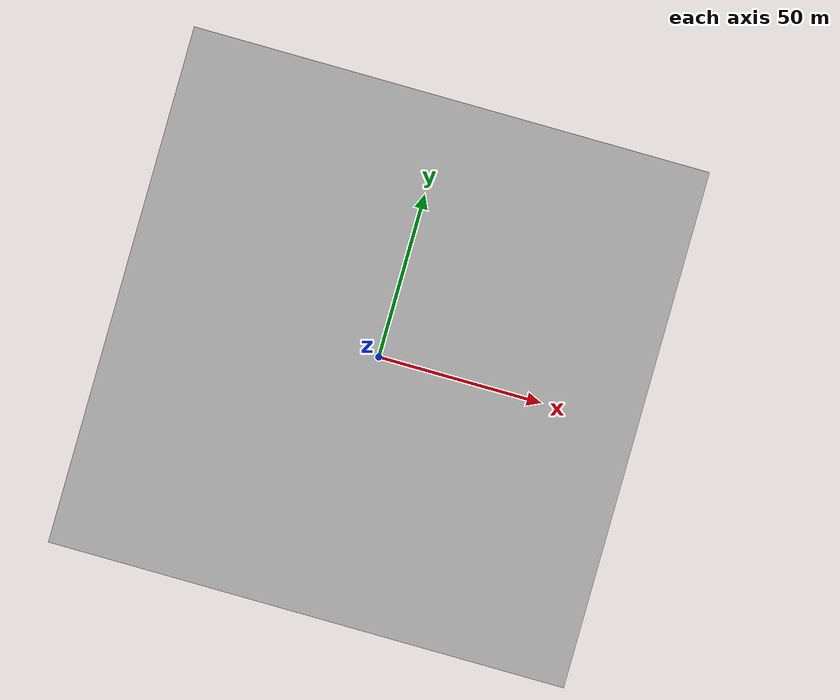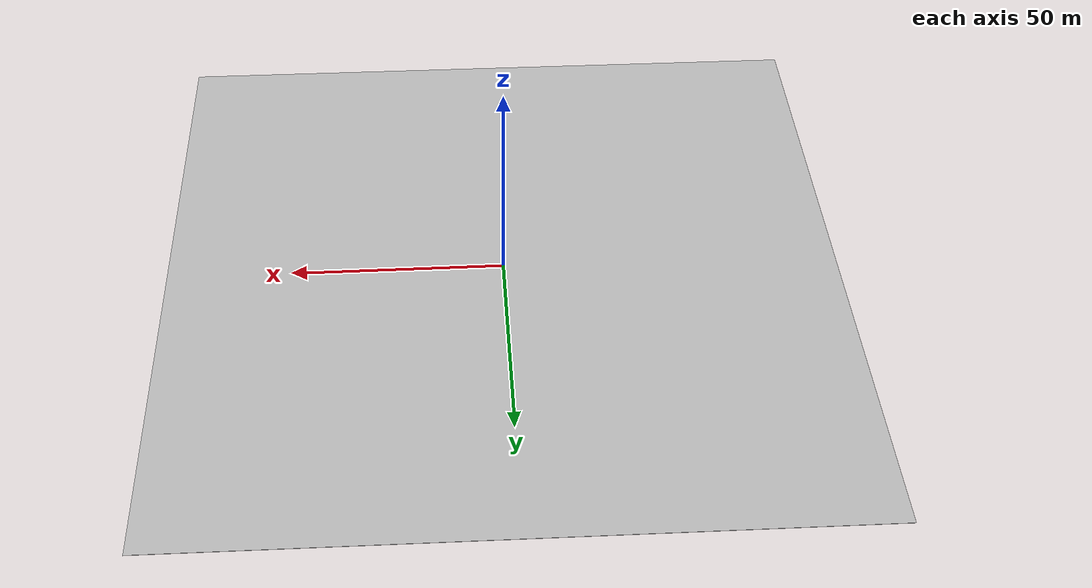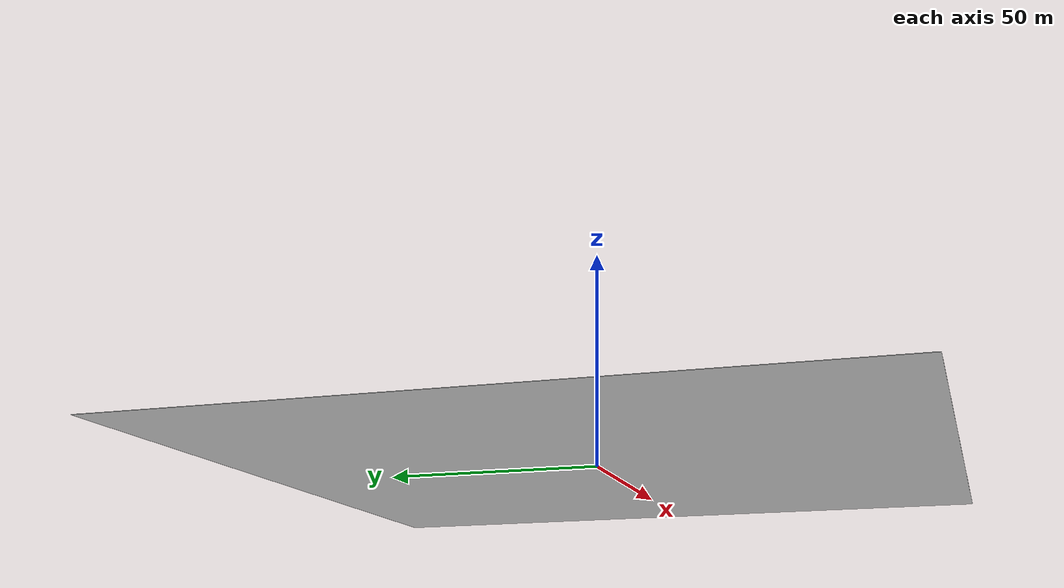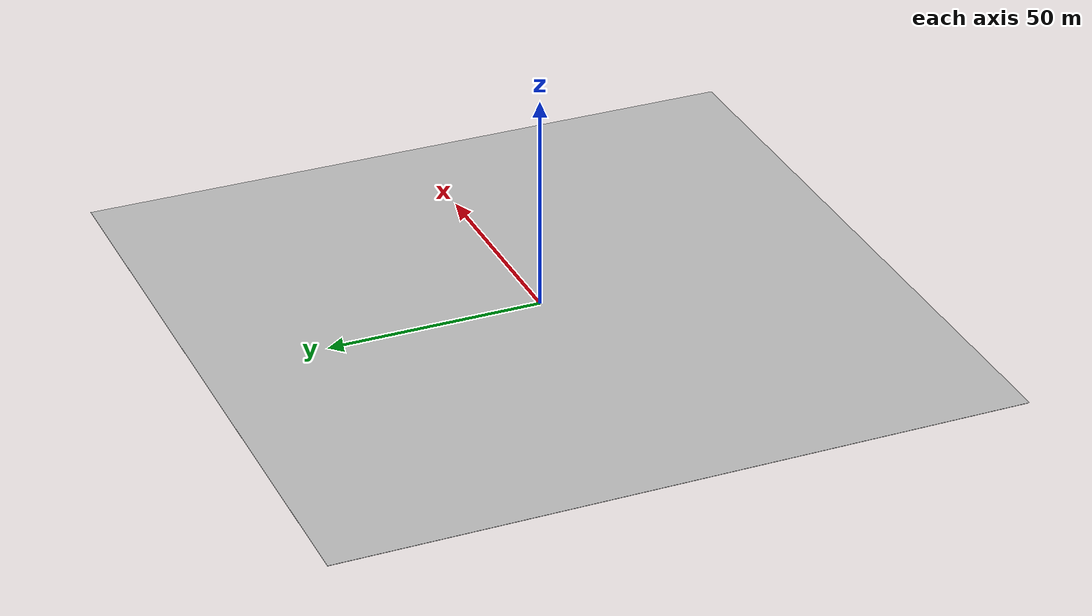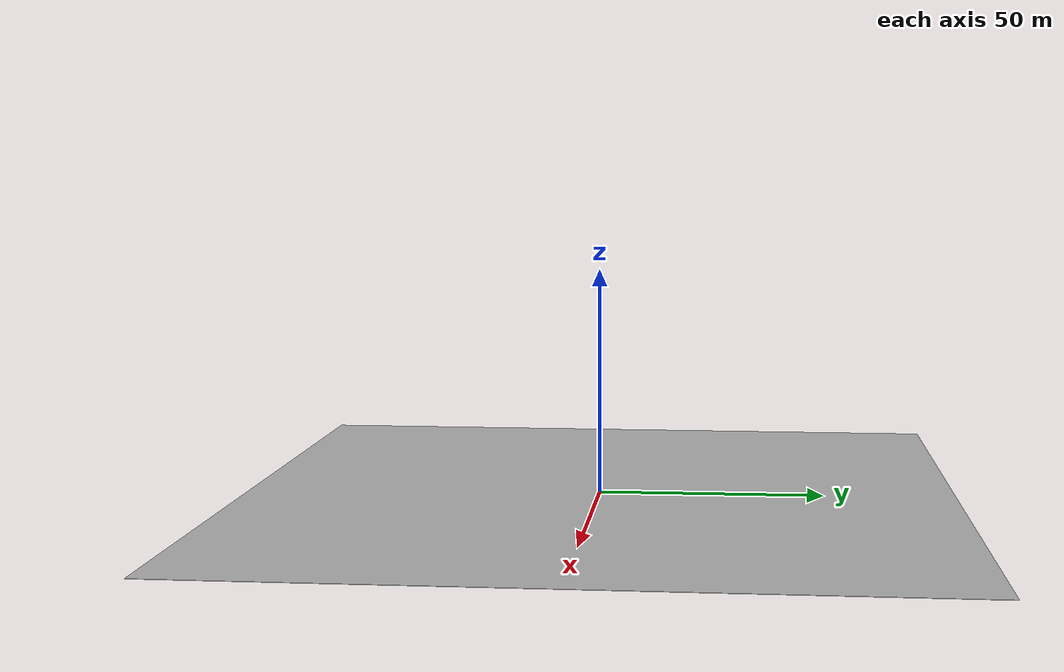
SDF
<?xml version="1.0" ?>
<sdf version="1.5">
  <model name="parkour_scenario">
    <static>true</static>
    <link name="floor">
      <collision name="collision">
        <geometry>
          <box>
            <size>158.52 158.52 .1</size>
          </box>
        </geometry>
      </collision>
      <visual name="visual">
        <cast_shadows>false</cast_shadows>
        <geometry>
          <box>
            <size>158.52 158.52 .1</size>
          </box>
        </geometry>
        <material>
          <script>
            <uri>model://parkour_scenario/materials/scripts</uri>
            <uri>model://parkour_scenario/materials/textures</uri>
            <name>parkour_scenario</name>
          </script>
        </material>
      </visual>
    </link>
  </model>
</sdf>
